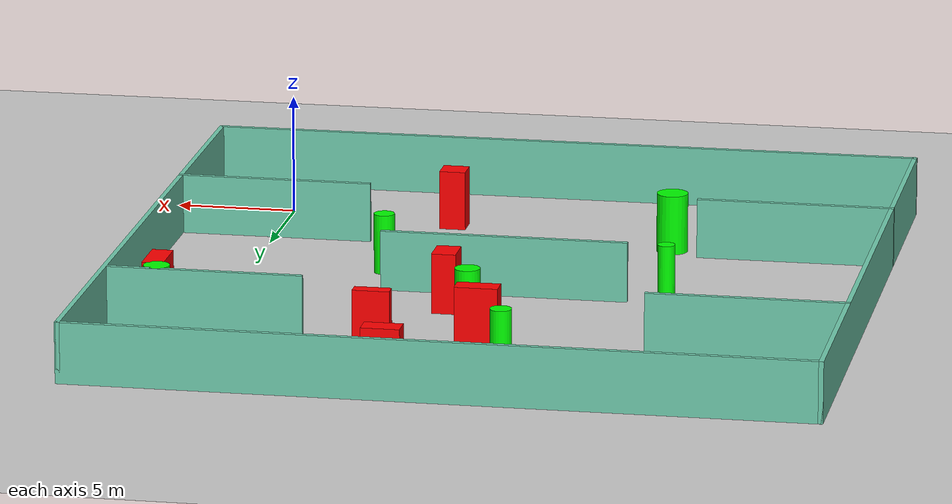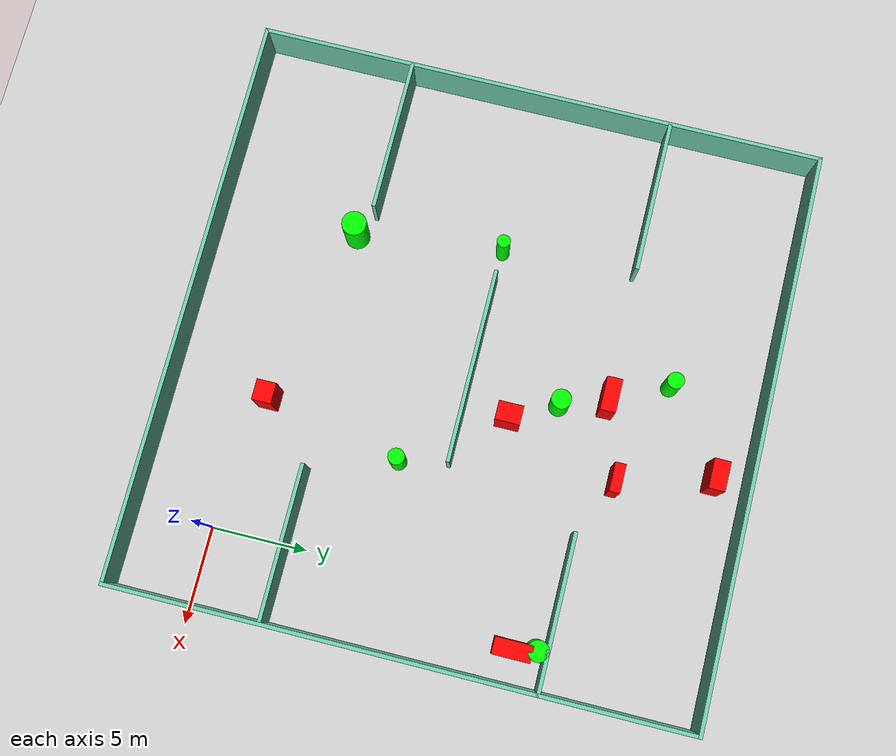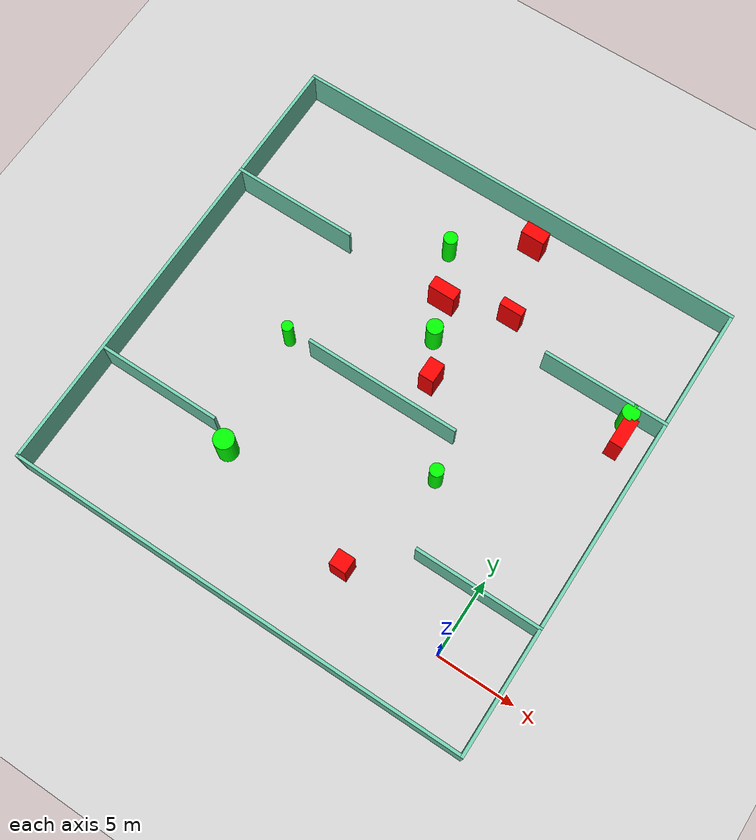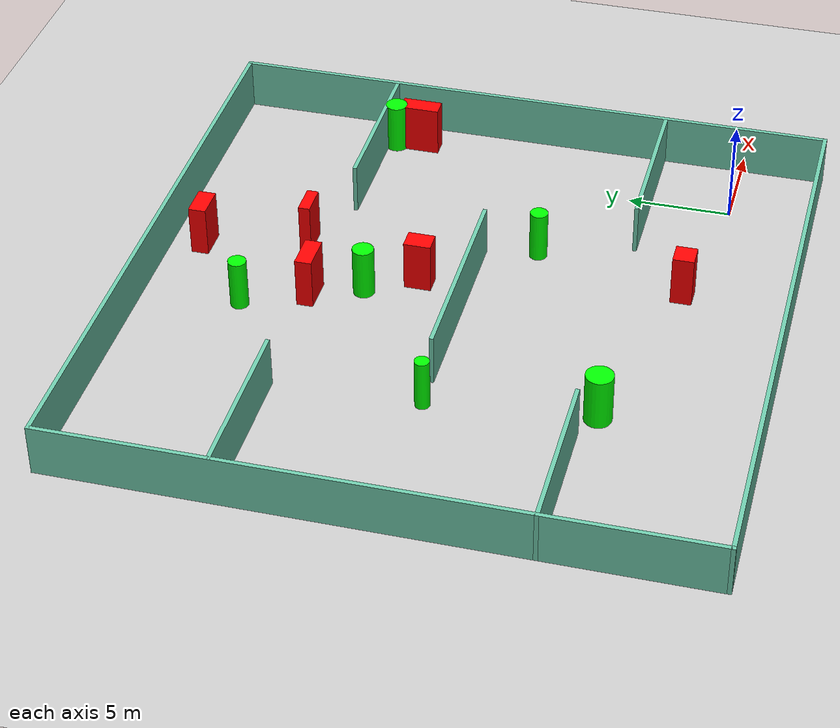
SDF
<sdf version="1.7">
 <world name="default">
  <light name="sun" type="directional">
   <pose>0 0 10 0 -0 0</pose>
   <diffuse>0.8 0.8 0.8 1</diffuse>
   <specular>0.2 0.2 0.2 1</specular>
   <attenuation>
    <range>1000</range>
    <constant>0.9</constant>
    <linear>0.01</linear>
    <quadratic>0.001</quadratic>
   </attenuation>
   <direction>-0.5 0.1 -0.9</direction>
   <spot><inner_angle>0</inner_angle><outer_angle>0</outer_angle><falloff>0</falloff></spot>
  </light>
  <model name="ground_plane">
   <static>1</static>
   <link name="link">
    <collision name="collision">
     <geometry><plane><normal>0 0 1</normal><size>100 100</size></plane></geometry>
     <surface>
      <contact><collide_bitmask>65535</collide_bitmask></contact>
      <friction><ode><mu>100</mu><mu2>50</mu2></ode></friction>
     </surface>
    </collision>
    <visual name="visual">
     <cast_shadows>0</cast_shadows>
     <geometry><plane><normal>0 0 1</normal><size>100 100</size></plane></geometry>
     <material>
      <script><uri>file://media/materials/scripts/gazebo.material</uri><name>Gazebo/Grey</name></script>
     </material>
    </visual>
   </link>
  </model>
  <gravity>0 0 -9.8</gravity>
  <magnetic_field>6e-06 2.3e-05 -4.2e-05</magnetic_field>
  <atmosphere type="adiabatic"/>
  <physics type="ode">
   <max_step_size>0.001</max_step_size>
   <real_time_factor>1</real_time_factor>
   <real_time_update_rate>1000</real_time_update_rate>
  </physics>
  <scene><ambient>0.4 0.4 0.4 1</ambient><background>0.7 0.7 0.7 1</background><shadows>1</shadows></scene>
  <spherical_coordinates>
   <surface_model>EARTH_WGS84</surface_model>
   <latitude_deg>0</latitude_deg>
   <longitude_deg>0</longitude_deg>
   <elevation>0</elevation>
   <heading_deg>0</heading_deg>
  </spherical_coordinates>
  <model name="my_base_walls">
   <link name="Wall_10">
    <collision name="Wall_10_Collision">
     <geometry><box><size>8.2 0.2 2.5</size></box></geometry>
     <pose>0 0 1.25 0 -0 0</pose>
    </collision>
    <visual name="Wall_10_Visual">
     <pose>0 0 1.25 0 -0 0</pose>
     <geometry><box><size>8.2 0.2 2.5</size></box></geometry>
     <material>
      <script><uri>file://media/materials/scripts/gazebo.material</uri><name>Gazebo/Grey</name></script>
      <ambient>0.435294 0.796078 0.67451 1</ambient>
     </material>
     <meta><layer>0</layer></meta>
    </visual>
    <pose>-11 -7 0 0 -0 0</pose>
   </link>
   <link name="Wall_12">
    <collision name="Wall_12_Collision">
     <geometry><box><size>8.2 0.2 2.5</size></box></geometry>
     <pose>0 0 1.25 0 -0 0</pose>
    </collision>
    <visual name="Wall_12_Visual">
     <pose>0 0 1.25 0 -0 0</pose>
     <geometry><box><size>8.2 0.2 2.5</size></box></geometry>
     <material>
      <script><uri>file://media/materials/scripts/gazebo.material</uri><name>Gazebo/Grey</name></script>
      <ambient>0.435294 0.796078 0.67451 1</ambient>
     </material>
     <meta><layer>0</layer></meta>
    </visual>
    <pose>-11 7 0 0 -0 0</pose>
   </link>
   <link name="Wall_14">
    <collision name="Wall_14_Collision">
     <geometry><box><size>8.2 0.2 2.5</size></box></geometry>
     <pose>0 0 1.25 0 -0 0</pose>
    </collision>
    <visual name="Wall_14_Visual">
     <pose>0 0 1.25 0 -0 0</pose>
     <geometry><box><size>8.2 0.2 2.5</size></box></geometry>
     <material>
      <script><uri>file://media/materials/scripts/gazebo.material</uri><name>Gazebo/Grey</name></script>
      <ambient>0.435294 0.796078 0.67451 1</ambient>
     </material>
     <meta><layer>0</layer></meta>
    </visual>
    <pose>11 7 0 0 -0 3.14159</pose>
   </link>
   <link name="Wall_16">
    <collision name="Wall_16_Collision">
     <geometry><box><size>10.2 0.2 2.5</size></box></geometry>
     <pose>0 0 1.25 0 -0 0</pose>
    </collision>
    <visual name="Wall_16_Visual">
     <pose>0 0 1.25 0 -0 0</pose>
     <geometry><box><size>10.2 0.2 2.5</size></box></geometry>
     <material>
      <script><uri>file://media/materials/scripts/gazebo.material</uri><name>Gazebo/Grey</name></script>
      <ambient>0.435294 0.796078 0.67451 1</ambient>
     </material>
     <meta><layer>0</layer></meta>
    </visual>
    <pose>0 0 0 0 -0 3.14159</pose>
   </link>
   <link name="Wall_2">
    <collision name="Wall_2_Collision">
     <geometry><box><size>30.2 0.2 2.5</size></box></geometry>
     <pose>0 0 1.25 0 -0 0</pose>
    </collision>
    <visual name="Wall_2_Visual">
     <pose>0 0 1.25 0 -0 0</pose>
     <geometry><box><size>30.2 0.2 2.5</size></box></geometry>
     <material>
      <script><uri>file://media/materials/scripts/gazebo.material</uri><name>Gazebo/Grey</name></script>
      <ambient>0.435294 0.796078 0.67451 1</ambient>
     </material>
     <meta><layer>0</layer></meta>
    </visual>
    <pose>0 -15 0 0 -0 3.14159</pose>
   </link>
   <link name="Wall_3">
    <collision name="Wall_3_Collision">
     <geometry><box><size>30.2 0.2 2.5</size></box></geometry>
     <pose>0 0 1.25 0 -0 0</pose>
    </collision>
    <visual name="Wall_3_Visual">
     <pose>0 0 1.25 0 -0 0</pose>
     <geometry><box><size>30.2 0.2 2.5</size></box></geometry>
     <material>
      <script><uri>file://media/materials/scripts/gazebo.material</uri><name>Gazebo/Grey</name></script>
      <ambient>0.435294 0.796078 0.67451 1</ambient>
     </material>
     <meta><layer>0</layer></meta>
    </visual>
    <pose>-15 0 0 0 -0 1.5708</pose>
   </link>
   <link name="Wall_4">
    <collision name="Wall_4_Collision">
     <geometry><box><size>30.2 0.2 2.5</size></box></geometry>
     <pose>0 0 1.25 0 -0 0</pose>
    </collision>
    <visual name="Wall_4_Visual">
     <pose>0 0 1.25 0 -0 0</pose>
     <geometry><box><size>30.2 0.2 2.5</size></box></geometry>
     <material>
      <script><uri>file://media/materials/scripts/gazebo.material</uri><name>Gazebo/Grey</name></script>
      <ambient>0.435294 0.796078 0.67451 1</ambient>
     </material>
     <meta><layer>0</layer></meta>
    </visual>
    <pose>0 15 0 0 -0 0</pose>
   </link>
   <link name="Wall_6">
    <collision name="Wall_6_Collision">
     <geometry><box><size>30.2 0.2 2.5</size></box></geometry>
     <pose>0 0 1.25 0 -0 0</pose>
    </collision>
    <visual name="Wall_6_Visual">
     <pose>0 0 1.25 0 -0 0</pose>
     <geometry><box><size>30.2 0.2 2.5</size></box></geometry>
     <material>
      <script><uri>file://media/materials/scripts/gazebo.material</uri><name>Gazebo/Grey</name></script>
      <ambient>0.435294 0.796078 0.67451 1</ambient>
     </material>
     <meta><layer>0</layer></meta>
    </visual>
    <pose>15 0 0 0 -0 1.5708</pose>
   </link>
   <link name="Wall_8">
    <collision name="Wall_8_Collision">
     <geometry><box><size>8.2 0.2 2.5</size></box></geometry>
     <pose>0 0 1.25 0 -0 0</pose>
    </collision>
    <visual name="Wall_8_Visual">
     <pose>0 0 1.25 0 -0 0</pose>
     <geometry><box><size>8.2 0.2 2.5</size></box></geometry>
     <material>
      <script><uri>file://media/materials/scripts/gazebo.material</uri><name>Gazebo/Grey</name></script>
      <ambient>0.435294 0.796078 0.67451 1</ambient>
     </material>
     <meta><layer>0</layer></meta>
    </visual>
    <pose>11 -7 0 0 -0 3.14159</pose>
   </link>
   <static>1</static>
   <pose>-11 11 0 0 -0 0</pose>
  </model>
  <model name="cylinder1">
   <static>1</static>
   <link name="link">
    <inertial>
     <mass>1</mass>
     <inertia><ixx>0.5</ixx><ixy>0</ixy><ixz>0</ixz><iyy>0.5</iyy><iyz>0</iyz><izz>1</izz></inertia>
    </inertial>
    <collision name="collision">
     <geometry><cylinder><radius>0.5180227637243049</radius><length>2.5</length></cylinder></geometry>
    </collision>
    <visual name="visual">
     <geometry><cylinder><radius>0.5180227637243049</radius><length>2.5</length></cylinder></geometry>
     <material>
      <ambient>0 1 0 1</ambient>
      <diffuse>0 1 0 1</diffuse>
      <specular>0.1 0.1 0.1 1</specular>
      <emissive>0 0 0 0</emissive>
     </material>
    </visual>
   </link>
   <pose>-10.375892094506638 15.780083745045108 1.25 0 0 0</pose>
  </model>
  <model name="cylinder2">
   <static>1</static>
   <link name="link">
    <inertial>
     <mass>1</mass>
     <inertia><ixx>0.5</ixx><ixy>0</ixy><ixz>0</ixz><iyy>0.5</iyy><iyz>0</iyz><izz>1</izz></inertia>
    </inertial>
    <collision name="collision">
     <geometry><cylinder><radius>0.43777796215846093</radius><length>2.5</length></cylinder></geometry>
    </collision>
    <visual name="visual">
     <geometry><cylinder><radius>0.43777796215846093</radius><length>2.5</length></cylinder></geometry>
     <material>
      <ambient>0 1 0 1</ambient>
      <diffuse>0 1 0 1</diffuse>
      <specular>0.1 0.1 0.1 1</specular>
      <emissive>0 0 0 0</emissive>
     </material>
    </visual>
   </link>
   <pose>-12.692760305624432 21.177367937522533 1.25 0 0 0</pose>
  </model>
  <model name="cylinder3">
   <static>1</static>
   <link name="link">
    <inertial>
     <mass>1</mass>
     <inertia><ixx>0.5</ixx><ixy>0</ixy><ixz>0</ixz><iyy>0.5</iyy><iyz>0</iyz><izz>1</izz></inertia>
    </inertial>
    <collision name="collision">
     <geometry><cylinder><radius>0.4322678946527081</radius><length>2.5</length></cylinder></geometry>
    </collision>
    <visual name="visual">
     <geometry><cylinder><radius>0.4322678946527081</radius><length>2.5</length></cylinder></geometry>
     <material>
      <ambient>0 1 0 1</ambient>
      <diffuse>0 1 0 1</diffuse>
      <specular>0.1 0.1 0.1 1</specular>
      <emissive>0 0 0 0</emissive>
     </material>
    </visual>
   </link>
   <pose>-5.552631591094411 8.438563077302003 1.25 0 0 0</pose>
  </model>
  <model name="cylinder4">
   <static>1</static>
   <link name="link">
    <inertial>
     <mass>1</mass>
     <inertia><ixx>0.5</ixx><ixy>0</ixy><ixz>0</ixz><iyy>0.5</iyy><iyz>0</iyz><izz>1</izz></inertia>
    </inertial>
    <collision name="collision">
     <geometry><cylinder><radius>0.5414118629842122</radius><length>2.5</length></cylinder></geometry>
    </collision>
    <visual name="visual">
     <geometry><cylinder><radius>0.5414118629842122</radius><length>2.5</length></cylinder></geometry>
     <material>
      <ambient>0 1 0 1</ambient>
      <diffuse>0 1 0 1</diffuse>
      <specular>0.1 0.1 0.1 1</specular>
      <emissive>0 0 0 0</emissive>
     </material>
    </visual>
   </link>
   <pose>1.9638803037173034 17.526469598262402 1.25 0 0 0</pose>
  </model>
  <model name="cylinder5">
   <static>1</static>
   <link name="link">
    <inertial>
     <mass>1</mass>
     <inertia><ixx>0.5</ixx><ixy>0</ixy><ixz>0</ixz><iyy>0.5</iyy><iyz>0</iyz><izz>1</izz></inertia>
    </inertial>
    <collision name="collision">
     <geometry><cylinder><radius>0.35207806725269664</radius><length>2.5</length></cylinder></geometry>
    </collision>
    <visual name="visual">
     <geometry><cylinder><radius>0.35207806725269664</radius><length>2.5</length></cylinder></geometry>
     <material>
      <ambient>0 1 0 1</ambient>
      <diffuse>0 1 0 1</diffuse>
      <specular>0.1 0.1 0.1 1</specular>
      <emissive>0 0 0 0</emissive>
     </material>
    </visual>
   </link>
   <pose>-17.69063258638606 11.003640670848903 1.25 0 0 0</pose>
  </model>
  <model name="cylinder6">
   <static>1</static>
   <link name="link">
    <inertial>
     <mass>1</mass>
     <inertia><ixx>0.5</ixx><ixy>0</ixy><ixz>0</ixz><iyy>0.5</iyy><iyz>0</iyz><izz>1</izz></inertia>
    </inertial>
    <collision name="collision">
     <geometry><cylinder><radius>0.6508367915579503</radius><length>2.5</length></cylinder></geometry>
    </collision>
    <visual name="visual">
     <geometry><cylinder><radius>0.6508367915579503</radius><length>2.5</length></cylinder></geometry>
     <material>
      <ambient>0 1 0 1</ambient>
      <diffuse>0 1 0 1</diffuse>
      <specular>0.1 0.1 0.1 1</specular>
      <emissive>0 0 0 0</emissive>
     </material>
    </visual>
   </link>
   <pose>-16.748762790211305 3.263646547350243 1.25 0 0 0</pose>
  </model>
  <model name="box1">
   <static>1</static>
   <link name="link">
    <inertial>
     <mass>1</mass>
     <inertia><ixx>0.083</ixx><ixy>0</ixy><ixz>0</ixz><iyy>0.083</iyy><iyz>0</iyz><izz>0.083</izz></inertia>
    </inertial>
    <collision name="collision">
     <geometry><box><size>0.9934902384389442 1.2979108972716311 2.5</size></box></geometry>
    </collision>
    <visual name="visual">
     <geometry><box><size>0.9934902384389442 1.2979108972716311 2.5</size></box></geometry>
     <material>
      <ambient>1 0 0 1</ambient>
      <diffuse>1 0 0 1</diffuse>
      <specular>0.1 0.1 0.1 1</specular>
      <emissive>0 0 0 0</emissive>
     </material>
    </visual>
    <sensor name="my_contact" type="contact">
     <contact><collision>box_collision</collision><topic>__default_topic__</topic></contact>
    </sensor>
   </link>
   <pose>-9.07252201730044 13.400693934231633 1.25 0 0 0</pose>
  </model>
  <model name="box2">
   <static>1</static>
   <link name="link">
    <inertial>
     <mass>1</mass>
     <inertia><ixx>0.083</ixx><ixy>0</ixy><ixz>0</ixz><iyy>0.083</iyy><iyz>0</iyz><izz>0.083</izz></inertia>
    </inertial>
    <collision name="collision">
     <geometry><box><size>1.5041618679375304 0.5573455124198741 2.5</size></box></geometry>
    </collision>
    <visual name="visual">
     <geometry><box><size>1.5041618679375304 0.5573455124198741 2.5</size></box></geometry>
     <material>
      <ambient>1 0 0 1</ambient>
      <diffuse>1 0 0 1</diffuse>
      <specular>0.1 0.1 0.1 1</specular>
      <emissive>0 0 0 0</emissive>
     </material>
    </visual>
    <sensor name="my_contact" type="contact">
     <contact><collision>box_collision</collision><topic>__default_topic__</topic></contact>
    </sensor>
   </link>
   <pose>-7.191073419008005 19.409119218336507 1.25 0 0 0</pose>
  </model>
  <model name="box3">
   <static>1</static>
   <link name="link">
    <inertial>
     <mass>1</mass>
     <inertia><ixx>0.083</ixx><ixy>0</ixy><ixz>0</ixz><iyy>0.083</iyy><iyz>0</iyz><izz>0.083</izz></inertia>
    </inertial>
    <collision name="collision">
     <geometry><box><size>1.7589434351213686 0.8029322331525328 2.5</size></box></geometry>
    </collision>
    <visual name="visual">
     <geometry><box><size>1.7589434351213686 0.8029322331525328 2.5</size></box></geometry>
     <material>
      <ambient>1 0 0 1</ambient>
      <diffuse>1 0 0 1</diffuse>
      <specular>0.1 0.1 0.1 1</specular>
      <emissive>0 0 0 0</emissive>
     </material>
    </visual>
    <sensor name="my_contact" type="contact">
     <contact><collision>box_collision</collision><topic>__default_topic__</topic></contact>
    </sensor>
   </link>
   <pose>-11.216849699874803 18.180862894474746 1.25 0 0 0</pose>
  </model>
  <model name="box4">
   <static>1</static>
   <link name="link">
    <inertial>
     <mass>1</mass>
     <inertia><ixx>0.083</ixx><ixy>0</ixy><ixz>0</ixz><iyy>0.083</iyy><iyz>0</iyz><izz>0.083</izz></inertia>
    </inertial>
    <collision name="collision">
     <geometry><box><size>0.871573802456532 1.947211023773851 2.5</size></box></geometry>
    </collision>
    <visual name="visual">
     <geometry><box><size>0.871573802456532 1.947211023773851 2.5</size></box></geometry>
     <material>
      <ambient>1 0 0 1</ambient>
      <diffuse>1 0 0 1</diffuse>
      <specular>0.1 0.1 0.1 1</specular>
      <emissive>0 0 0 0</emissive>
     </material>
    </visual>
    <sensor name="my_contact" type="contact">
     <contact><collision>box_collision</collision><topic>__default_topic__</topic></contact>
    </sensor>
   </link>
   <pose>2.203545053493933 16.301831880988484 1.25 0 0 0</pose>
  </model>
  <model name="box5">
   <static>1</static>
   <link name="link">
    <inertial>
     <mass>1</mass>
     <inertia><ixx>0.083</ixx><ixy>0</ixy><ixz>0</ixz><iyy>0.083</iyy><iyz>0</iyz><izz>0.083</izz></inertia>
    </inertial>
    <collision name="collision">
     <geometry><box><size>1.0927137427577032 1.0210627269058188 2.5</size></box></geometry>
    </collision>
    <visual name="visual">
     <geometry><box><size>1.0927137427577032 1.0210627269058188 2.5</size></box></geometry>
     <material>
      <ambient>1 0 0 1</ambient>
      <diffuse>1 0 0 1</diffuse>
      <specular>0.1 0.1 0.1 1</specular>
      <emissive>0 0 0 0</emissive>
     </material>
    </visual>
    <sensor name="my_contact" type="contact">
     <contact><collision>box_collision</collision><topic>__default_topic__</topic></contact>
    </sensor>
   </link>
   <pose>-7.13850519921499 1.1377365567586333 1.25 0 0 0</pose>
  </model>
  <model name="box6">
   <static>1</static>
   <link name="link">
    <inertial>
     <mass>1</mass>
     <inertia><ixx>0.083</ixx><ixy>0</ixy><ixz>0</ixz><iyy>0.083</iyy><iyz>0</iyz><izz>0.083</izz></inertia>
    </inertial>
    <collision name="collision">
     <geometry><box><size>1.5561530951412583 0.8478239601149696 2.5</size></box></geometry>
    </collision>
    <visual name="visual">
     <geometry><box><size>1.5561530951412583 0.8478239601149696 2.5</size></box></geometry>
     <material>
      <ambient>1 0 0 1</ambient>
      <diffuse>1 0 0 1</diffuse>
      <specular>0.1 0.1 0.1 1</specular>
      <emissive>0 0 0 0</emissive>
     </material>
    </visual>
    <sensor name="my_contact" type="contact">
     <contact><collision>box_collision</collision><topic>__default_topic__</topic></contact>
    </sensor>
   </link>
   <pose>-8.556344855278713 24.312952879795912 1.25 0 0 0</pose>
  </model>
 </world>
</sdf>
